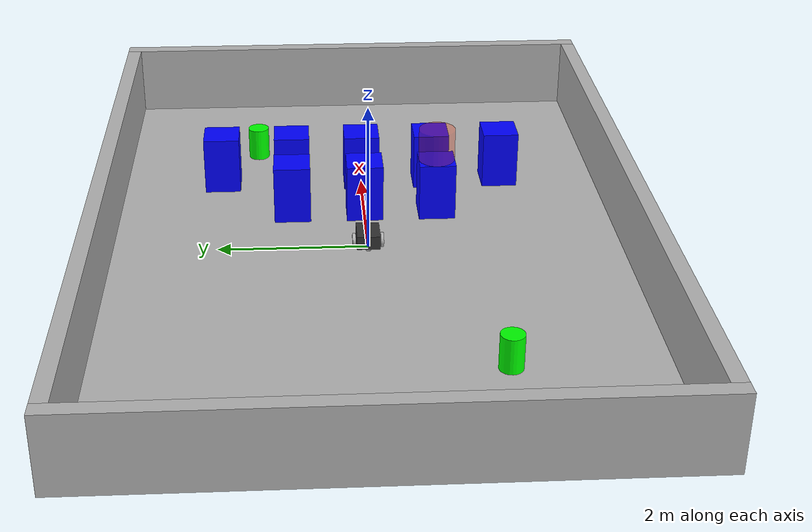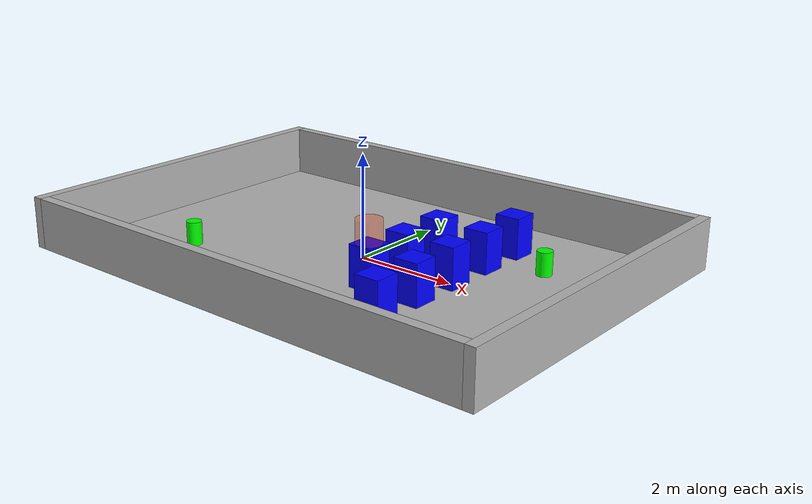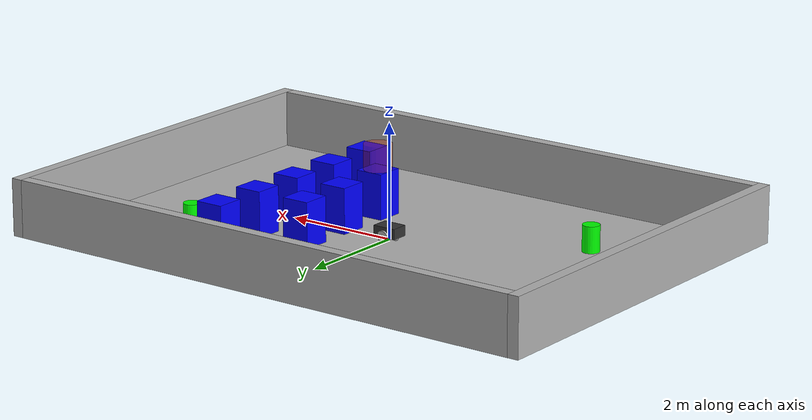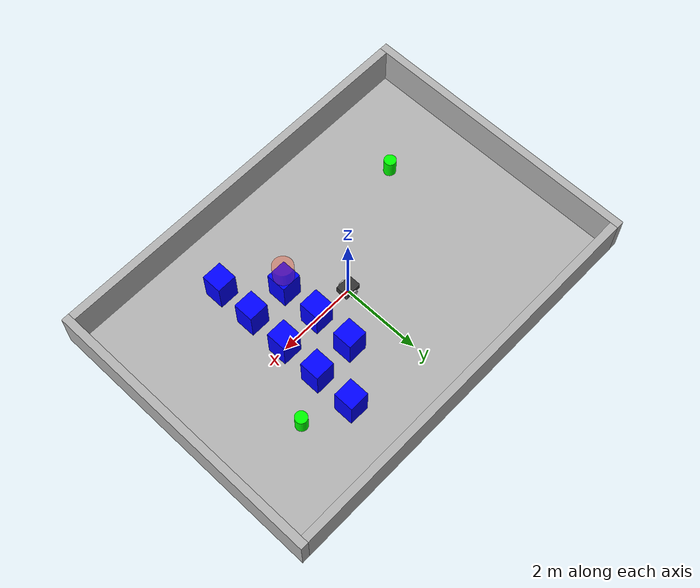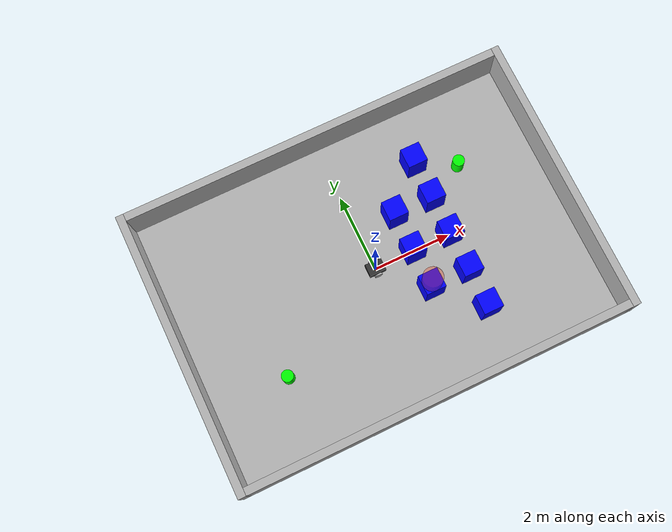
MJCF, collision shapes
<mujoco model="jackal_safe_navigation">
	<compiler angle="radian" meshdir="meshes/" />

    <size njmax="3000" nconmax="1000" />
    <option gravity="0 0 -9.8"/>
	<option timestep="0.002">
		<flag warmstart="enable"></flag>
	</option>

    <default>
        <geom condim="6" density="5" rgba="0.7 0.7 0.7 1" size=".05" type="sphere"/>
        <joint damping=".001"/>
        <site size="0.032" type="sphere"/>
        <velocity ctrlrange="-1 1" ctrllimited="true" forcerange="-1 1" forcelimited="true"/>
    </default>

    <asset>
        <!--Meshes-->
        <mesh name="base" file="jackal-base.stl" />
        <mesh name="wheel" file="jackal-wheel.stl" />
        <mesh name="fender" file="jackal-fender.stl" />

        <!--Textures-->
        <texture name="floor_tex"   type="2d" builtin="checker" rgb1="0.7 0.7 0.7" rgb2="0.8 0.8 0.8" width="100" height="100" />

        <!--Materials-->
        <material name="floor_mat" texture="floor_tex" shininess="0.3" texrepeat="5 5" specular="0.5" reflectance="0.2" />
        <material name="wall_mat" rgba="0.7 0.7 0.7 1" shininess="0.8" specular="0.7" reflectance="0.5" />
        <material name="bench_mat" texture="floor_tex" shininess="0.1" specular="0.5" reflectance="0.2"/>
    </asset>

	<worldbody>
		<light directional="true" ambient="0.2 0.2 0.2" diffuse="0.4 0.4 0.4" specular="0.1 0.1 0.1" castshadow="false" pos="0 0 4" dir="0 0 -1" name="light0" />

        <!-- Floor Property -->
        <geom name='floor' material="floor_mat" pos='0 0 0' size='5.0 3.5 0.1'  type='plane' condim="3"/>

        <!-- Wall Property -->
        <geom name='wall1' material="wall_mat" pos='0 3.5 0.5' size='4.9 0.1 0.5'  type='box' condim="6" group="2"/>
        <geom name='wall2' material="wall_mat" pos='0 -3.5 0.5' size='4.9 0.1 0.5'  type='box' condim="6" group="2"/>
        <geom name='wall3' material="wall_mat" pos='5 0 0.5' size='0.1 3.6 0.5'  type='box' condim="6" group="2"/>
        <geom name='wall4' material="wall_mat" pos='-5 0 0.5' size='0.1 3.6 0.5'  type='box' condim="6" group="2"/>

		<!-- camera: front view -->
		<camera mode="fixed" name="frontview" pos="3.0 0 1.85" quat="0.56 0.43 0.43 0.56"/>

		<!-- Robot -->
		<body name="robot" pos="0 0 0.06344">
            <site name="robot" pos="0 0 0"/>
            <joint type="free" name="robot" damping="0"/>

            <geom pos="0 0 -0.0655" quat="0.5 0.5 0.5 0.5" type="mesh" contype="0" conaffinity="0" group="1" rgba="0.15 0.15 0.15 1" mesh="base"/>
            <geom pos="0 0 0" quat="0 0 0 1" type="mesh" contype="0" conaffinity="0" group="1" rgba="1.0 0.7 0 1" mesh="fender"/>
            <geom pos="0 0 0" quat="1 0 0 0" type="mesh" contype="0" conaffinity="0" group="1" rgba="1.0 0.7 0 1" mesh="fender"/>
            <geom pos="0.131 0.187795 0.0345" quat="0.707107 0.707107 0 0" type="mesh" contype="0" conaffinity="0" group="1" rgba="0.15 0.15 0.15 1" mesh="wheel"/>
            <geom pos="0.131 -0.187795 0.0345" quat="0.707107 0.707107 0 0" type="mesh" contype="0" conaffinity="0" group="1" rgba="0.15 0.15 0.15 1" mesh="wheel"/>
            <geom pos="-0.131 0.187795 0.0345" quat="0.707107 0.707107 0 0" type="mesh" contype="0" conaffinity="0" group="1" rgba="0.15 0.15 0.15 1" mesh="wheel"/>
            <geom pos="-0.131 -0.187795 0.0345" quat="0.707107 0.707107 0 0" type="mesh" contype="0" conaffinity="0" group="1" rgba="0.15 0.15 0.15 1" mesh="wheel"/>

            <geom name="robot" size="0.21 0.155 0.092" pos="0 0 0.092" type="box" rgba="0.2 0.2 0.2 1" group="5"/>
            <body name="left" pos="0.0 0.187795 0.0345">
                <joint type="hinge" name="left" axis="0 1 0"/>
                <geom type="cylinder" name="left" size="0.098 0.02" quat="0.707107 0.707107 0 0" group="5" condim="4"/>
            </body>
            <body name="right" pos="0.0 -0.187795 0.0345">
                <joint type="hinge" name="right" axis="0 1 0"/>
                <geom type="cylinder" name="right" size="0.098 0.02" quat="0.707107 0.707107 0 0" group="5" condim="4"/>
            </body>
            <body name="front" pos="0.131 0 -0.0155">
                <joint name="front" type="ball"/>
                <geom name="front" size="0.048" group="5"/>
            </body>
            <body name="rear" pos="-0.131 0 -0.0155">
                <joint name="rear" type="ball"/>
                <geom name="rear" size="0.048" group="5"/>
            </body>
		</body>

	<body name="moving_object1" pos="3 1.5 .1">
	  <geom name="moving_object_geom1" type="cylinder" size="0.15 0.35" rgba="0 1 0 0.5" mass="0.1" group="2"/>
	</body>

	<body name="moving_object2" pos="-3 -1.5 .1">
	  <geom name="moving_object_geom2" type="cylinder" size="0.15 0.35" rgba="0 1 0 0.5" mass="0.1" group="2"/>
	</body>

        <body name="box1" pos="2.0 2.0 0.4">
            <site name="box1" pos="0 0 0" rgba="0 0 1 0"/>
            <joint type="free" name="box1" frictionloss="0" damping="0" />
            <geom name="box1" type="box" size="0.25 0.25 0.4" rgba="0 0 1 0.5" mass="0.1" group="2"/>
        </body>
        <body name="box2" pos="2.0 1.0 0.4">
            <site name="box2" pos="0 0 0" rgba="0 0 1 0"/>
            <joint type="free" name="box2" frictionloss="0" damping="0" />
            <geom name="box2" type="box" size="0.25 0.25 0.4" rgba="0 0 1 0.5" mass="0.1" group="2"/>
        </body>
        <body name="box3" pos="2.0 0.0 0.4">
            <site name="box3" pos="0 0 0" rgba="0 0 1 0"/>
            <joint type="free" name="box3" frictionloss="0" damping="0" />
            <geom name="box3" type="box" size="0.25 0.25 0.4" rgba="0 0 1 0.5" mass="0.1" group="2"/>
        </body>
        <body name="box4" pos="2.0 -1.0 0.4">
            <site name="box4" pos="0 0 0" rgba="0 0 1 0"/>
            <joint type="free" name="box4" frictionloss="0" damping="0" />
            <geom name="box4" type="box" size="0.25 0.25 0.4" rgba="0 0 1 0.5" mass="0.1" group="2"/>
        </body>
        <body name="box5" pos="2.0 -2.0 0.4">
            <site name="box5" pos="0 0 0" rgba="0 0 1 0"/>
            <joint type="free" name="box5" frictionloss="0" damping="0" />
            <geom name="box5" type="box" size="0.25 0.25 0.4" rgba="0 0 1 0.5" mass="0.1" group="2"/>
        </body>
        <body name="box6" pos="1.0 1.0 0.4">
            <site name="box6" pos="0 0 0" rgba="0 0 1 0"/>
            <joint type="free" name="box6" frictionloss="0" damping="0" />
            <geom name="box6" type="box" size="0.25 0.25 0.4" rgba="0 0 1 0.5" mass="0.1" group="2"/>
        </body>

        <body name="box7" pos="1.0 0.0 0.4">
            <site name="box7" pos="0 0 0" rgba="0 0 1 0"/>
            <joint type="free" name="box7" frictionloss="0" damping="0" />
            <geom name="box7" type="box" size="0.25 0.25 0.4" rgba="0 0 1 0.5" mass="0.1" group="2"/>
        </body>
        <body name="box8" pos="1.0 -1.0 0.4">
            <site name="box8" pos="0 0 0" rgba="0 0 1 0"/>
            <joint type="free" name="box8" frictionloss="0" damping="0" />
            <geom name="box8" type="box" size="0.25 0.25 0.4" rgba="0 0 1 0.5" mass="0.1" group="2"/>
        </body>
        <body name="box9" pos="2.0 2.0 0.4">
            <site name="box9" pos="0 0 0" rgba="0 0 1 0"/>
            <joint type="free" name="box9" frictionloss="0" damping="0" />
            <geom name="box9" type="box" size="0.25 0.25 0.4" rgba="0 0 1 0.5" mass="0.1" group="2"/>
        </body>
        <body name="box10" pos="2.0 1.0 0.4">
            <site name="box10" pos="0 0 0" rgba="0 0 1 0"/>
            <joint type="free" name="box10" frictionloss="0" damping="0" />
            <geom name="box10" type="box" size="0.25 0.25 0.4" rgba="0 0 1 0.5" mass="0.1" group="2"/>
        </body>
	-->

        <!-- goal -->
        <body name="goal" pos="1.0 -1.0 1.0">
            <site name="goal" pos="0 0 0" rgba="0 0 1 0"/>
            <joint type="free" name="goal" frictionloss="0" damping="0" />
            <geom type="cylinder" size="0.25 0.25 0.25" contype="0" conaffinity="0" group="1" rgba="1 0.2 0 0.3" mass="0.1"/>
        </body>

	</worldbody>

    <sensor>
        <!-- Used for observation -->
        <accelerometer site="robot" name="accelerometer"/>
        <velocimeter site="robot" name="velocimeter"/>
        <gyro site="robot" name="gyro"/>
    </sensor>

    <!--ACTUATORS-->
    <actuator>

        <motor gear="0.3 0 0 0 0 0" joint="left" name="left"/>
        <motor gear="0.3 0 0 0 0 0" joint="right" name="right"/>

    </actuator>
</mujoco>
